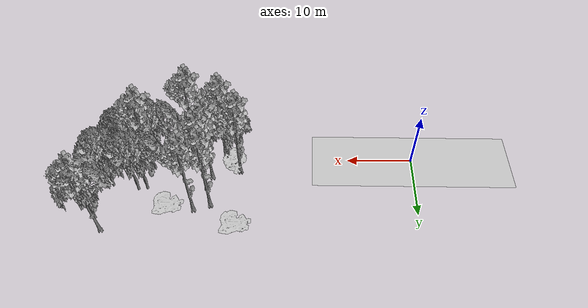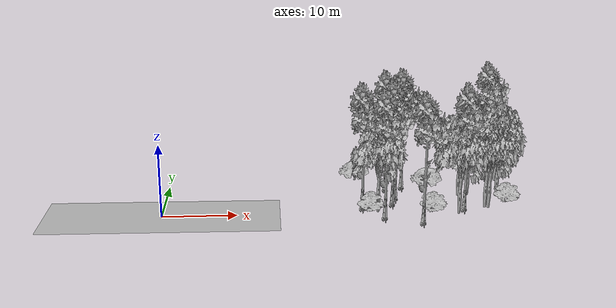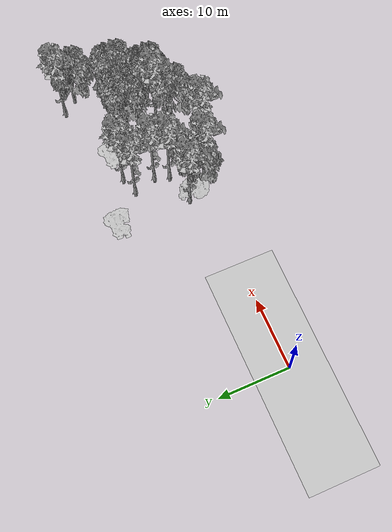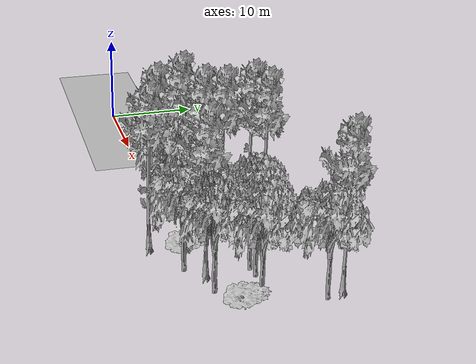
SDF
<sdf version="1.7">
 <world name="default">
  <model name="ground_plane">
   <static>1</static>
   <link name="link">
    <collision name="collision">
     <pose>-50 0 0 0 -0 0</pose>
     <geometry><plane><normal>0 0 1</normal><size>100 100</size></plane></geometry>
     <surface><contact><ode><min_depth>0.01</min_depth><max_vel>0</max_vel></ode></contact></surface>
    </collision>
    <visual name="grass">
     <cast_shadows>0</cast_shadows>
     <geometry>
      <mesh>
       <scale>0.5814285714285714 0.18142857142857144 0.1</scale>
       <uri>file://grass_plane/meshes/grass_plane.dae</uri>
      </mesh>
     </geometry>
    </visual>
   </link>
  </model>
  <model name="Tree 4">
   <static>1</static>
   <pose>47.5329402677274 11.142876085032373 0 1.57079 -0 0</pose>
   <link name="link">
    <collision name="collision">
     <geometry><mesh><scale>3.5 5 3.5</scale><uri>model://tree_2/meshes/tree_2.obj</uri></mesh></geometry>
    </collision>
    <visual name="visual">
     <geometry><mesh><scale>3.5 5 3.5</scale><uri>model://tree_2/meshes/tree_2.obj</uri></mesh></geometry>
    </visual>
   </link>
  </model>
  <model name="Tree 10">
   <static>1</static>
   <pose>39.57564780001539 -0.3773614892481305 0 1.57079 -0 0</pose>
   <link name="link">
    <collision name="collision">
     <geometry><mesh><scale>3.5 5 3.5</scale><uri>model://tree_2/meshes/tree_2.obj</uri></mesh></geometry>
    </collision>
    <visual name="visual">
     <geometry><mesh><scale>3.5 5 3.5</scale><uri>model://tree_2/meshes/tree_2.obj</uri></mesh></geometry>
    </visual>
   </link>
  </model>
  <model name="Tree 25">
   <static>1</static>
   <pose>34.440254552397334 -2.6742771190216548 0 1.57079 -0 0</pose>
   <link name="link">
    <collision name="collision">
     <geometry><mesh><scale>3.5 5 3.5</scale><uri>model://tree_9/meshes/tree_9.obj</uri></mesh></geometry>
    </collision>
    <visual name="visual">
     <geometry><mesh><scale>3.5 5 3.5</scale><uri>model://tree_9/meshes/tree_9.obj</uri></mesh></geometry>
    </visual>
   </link>
  </model>
  <model name="Tree 60">
   <static>1</static>
   <pose>46.54417143557491 13.033610520897081 0 1.57079 -0 0</pose>
   <link name="link">
    <collision name="collision">
     <geometry><mesh><scale>3.5 5 3.5</scale><uri>model://tree_9/meshes/tree_9.obj</uri></mesh></geometry>
    </collision>
    <visual name="visual">
     <geometry><mesh><scale>3.5 5 3.5</scale><uri>model://tree_9/meshes/tree_9.obj</uri></mesh></geometry>
    </visual>
   </link>
  </model>
  <model name="Tree 63">
   <static>1</static>
   <pose>33.45986092854601 9.449806431261983 0 1.57079 -0 0</pose>
   <link name="link">
    <collision name="collision">
     <geometry><mesh><scale>3.5 5 3.5</scale><uri>model://tree_9/meshes/tree_9.obj</uri></mesh></geometry>
    </collision>
    <visual name="visual">
     <geometry><mesh><scale>3.5 5 3.5</scale><uri>model://tree_9/meshes/tree_9.obj</uri></mesh></geometry>
    </visual>
   </link>
  </model>
  <model name="Tree 69">
   <static>1</static>
   <pose>40.829756542174124 5.772867485613297 0 1.57079 -0 0</pose>
   <link name="link">
    <collision name="collision">
     <geometry><mesh><scale>3.5 5 3.5</scale><uri>model://tree_2/meshes/tree_2.obj</uri></mesh></geometry>
    </collision>
    <visual name="visual">
     <geometry><mesh><scale>3.5 5 3.5</scale><uri>model://tree_2/meshes/tree_2.obj</uri></mesh></geometry>
    </visual>
   </link>
  </model>
  <model name="Tree 76">
   <static>1</static>
   <pose>31.244919717300974 3.420025732944598 0 1.57079 -0 0</pose>
   <link name="link">
    <collision name="collision">
     <geometry><mesh><scale>3.5 5 3.5</scale><uri>model://tree_9/meshes/tree_9.obj</uri></mesh></geometry>
    </collision>
    <visual name="visual">
     <geometry><mesh><scale>3.5 5 3.5</scale><uri>model://tree_9/meshes/tree_9.obj</uri></mesh></geometry>
    </visual>
   </link>
  </model>
  <model name="Tree 81">
   <static>1</static>
   <pose>46.93340850068259 3.553819145831728 0 1.57079 -0 0</pose>
   <link name="link">
    <collision name="collision">
     <geometry><mesh><scale>4 2.5 4</scale><uri>model://tree_1/meshes/tree_1.obj</uri></mesh></geometry>
    </collision>
    <visual name="visual">
     <geometry><mesh><scale>4 2.5 4</scale><uri>model://tree_1/meshes/tree_1.obj</uri></mesh></geometry>
    </visual>
   </link>
  </model>
  <model name="Tree 88">
   <static>1</static>
   <pose>43.56926943666306 1.566807455246753 0 1.57079 -0 0</pose>
   <link name="link">
    <collision name="collision">
     <geometry><mesh><scale>3.5 5 3.5</scale><uri>model://tree_2/meshes/tree_2.obj</uri></mesh></geometry>
    </collision>
    <visual name="visual">
     <geometry><mesh><scale>3.5 5 3.5</scale><uri>model://tree_2/meshes/tree_2.obj</uri></mesh></geometry>
    </visual>
   </link>
  </model>
  <model name="Tree 104">
   <static>1</static>
   <pose>31.941034102093326 5.427251664795463 0 1.57079 -0 0</pose>
   <link name="link">
    <collision name="collision">
     <geometry><mesh><scale>3.5 5 3.5</scale><uri>model://tree_9/meshes/tree_9.obj</uri></mesh></geometry>
    </collision>
    <visual name="visual">
     <geometry><mesh><scale>3.5 5 3.5</scale><uri>model://tree_9/meshes/tree_9.obj</uri></mesh></geometry>
    </visual>
   </link>
  </model>
  <model name="Tree 105">
   <static>1</static>
   <pose>27.009741940328766 12.361614503629813 0 1.57079 -0 0</pose>
   <link name="link">
    <collision name="collision">
     <geometry><mesh><scale>3 2 3</scale><uri>model://tree_3/meshes/tree_3.obj</uri></mesh></geometry>
    </collision>
    <visual name="visual">
     <geometry><mesh><scale>3 2 3</scale><uri>model://tree_3/meshes/tree_3.obj</uri></mesh></geometry>
    </visual>
   </link>
  </model>
  <model name="Tree 109">
   <static>1</static>
   <pose>27.74087672632298 1.0854739180341468 0 1.57079 -0 0</pose>
   <link name="link">
    <collision name="collision">
     <geometry><mesh><scale>4 2.5 4</scale><uri>model://tree_1/meshes/tree_1.obj</uri></mesh></geometry>
    </collision>
    <visual name="visual">
     <geometry><mesh><scale>4 2.5 4</scale><uri>model://tree_1/meshes/tree_1.obj</uri></mesh></geometry>
    </visual>
   </link>
  </model>
  <model name="Tree 116">
   <static>1</static>
   <pose>26.955285440189257 2.2409617777160697 0 1.57079 -0 0</pose>
   <link name="link">
    <collision name="collision">
     <geometry><mesh><scale>3.5 5 3.5</scale><uri>model://tree_9/meshes/tree_9.obj</uri></mesh></geometry>
    </collision>
    <visual name="visual">
     <geometry><mesh><scale>3.5 5 3.5</scale><uri>model://tree_9/meshes/tree_9.obj</uri></mesh></geometry>
    </visual>
   </link>
  </model>
  <model name="Tree 117">
   <static>1</static>
   <pose>29.60762128301289 -0.9989796378175431 0 1.57079 -0 0</pose>
   <link name="link">
    <collision name="collision">
     <geometry><mesh><scale>3.5 5 3.5</scale><uri>model://tree_9/meshes/tree_9.obj</uri></mesh></geometry>
    </collision>
    <visual name="visual">
     <geometry><mesh><scale>3.5 5 3.5</scale><uri>model://tree_9/meshes/tree_9.obj</uri></mesh></geometry>
    </visual>
   </link>
  </model>
  <model name="Tree 121">
   <static>1</static>
   <pose>42.16111150900407 5.93216875972308 0 1.57079 -0 0</pose>
   <link name="link">
    <collision name="collision">
     <geometry><mesh><scale>3.5 5 3.5</scale><uri>model://tree_2/meshes/tree_2.obj</uri></mesh></geometry>
    </collision>
    <visual name="visual">
     <geometry><mesh><scale>3.5 5 3.5</scale><uri>model://tree_2/meshes/tree_2.obj</uri></mesh></geometry>
    </visual>
   </link>
  </model>
  <model name="Tree 131">
   <static>1</static>
   <pose>28.799485183013047 0.5515827528016768 0 1.57079 -0 0</pose>
   <link name="link">
    <collision name="collision">
     <geometry><mesh><scale>3.5 5 3.5</scale><uri>model://tree_2/meshes/tree_2.obj</uri></mesh></geometry>
    </collision>
    <visual name="visual">
     <geometry><mesh><scale>3.5 5 3.5</scale><uri>model://tree_2/meshes/tree_2.obj</uri></mesh></geometry>
    </visual>
   </link>
  </model>
  <model name="Tree 133">
   <static>1</static>
   <pose>44.011615669436424 1.4203711779474695 0 1.57079 -0 0</pose>
   <link name="link">
    <collision name="collision">
     <geometry><mesh><scale>3.5 5 3.5</scale><uri>model://tree_2/meshes/tree_2.obj</uri></mesh></geometry>
    </collision>
    <visual name="visual">
     <geometry><mesh><scale>3.5 5 3.5</scale><uri>model://tree_2/meshes/tree_2.obj</uri></mesh></geometry>
    </visual>
   </link>
  </model>
  <model name="Tree 141">
   <static>1</static>
   <pose>40.795399618345925 1.4517553043383238 0 1.57079 -0 0</pose>
   <link name="link">
    <collision name="collision">
     <geometry><mesh><scale>3.5 5 3.5</scale><uri>model://tree_9/meshes/tree_9.obj</uri></mesh></geometry>
    </collision>
    <visual name="visual">
     <geometry><mesh><scale>3.5 5 3.5</scale><uri>model://tree_9/meshes/tree_9.obj</uri></mesh></geometry>
    </visual>
   </link>
  </model>
  <model name="Tree 156">
   <static>1</static>
   <pose>46.15880367517535 5.306682625462976 0 1.57079 -0 0</pose>
   <link name="link">
    <collision name="collision">
     <geometry><mesh><scale>3.5 5 3.5</scale><uri>model://tree_2/meshes/tree_2.obj</uri></mesh></geometry>
    </collision>
    <visual name="visual">
     <geometry><mesh><scale>3.5 5 3.5</scale><uri>model://tree_2/meshes/tree_2.obj</uri></mesh></geometry>
    </visual>
   </link>
  </model>
  <model name="Tree 160">
   <static>1</static>
   <pose>31.00223786693094 8.628351026293405 0 1.57079 -0 0</pose>
   <link name="link">
    <collision name="collision">
     <geometry><mesh><scale>3.5 5 3.5</scale><uri>model://tree_9/meshes/tree_9.obj</uri></mesh></geometry>
    </collision>
    <visual name="visual">
     <geometry><mesh><scale>3.5 5 3.5</scale><uri>model://tree_9/meshes/tree_9.obj</uri></mesh></geometry>
    </visual>
   </link>
  </model>
  <model name="Tree 164">
   <static>1</static>
   <pose>36.151579564533364 0.7013568157214127 0 1.57079 -0 0</pose>
   <link name="link">
    <collision name="collision">
     <geometry><mesh><scale>4 2.5 4</scale><uri>model://tree_1/meshes/tree_1.obj</uri></mesh></geometry>
    </collision>
    <visual name="visual">
     <geometry><mesh><scale>4 2.5 4</scale><uri>model://tree_1/meshes/tree_1.obj</uri></mesh></geometry>
    </visual>
   </link>
  </model>
  <model name="Tree 167">
   <static>1</static>
   <pose>37.16791267764947 9.22485731714142 0 1.57079 -0 0</pose>
   <link name="link">
    <collision name="collision">
     <geometry><mesh><scale>3 2 3</scale><uri>model://tree_3/meshes/tree_3.obj</uri></mesh></geometry>
    </collision>
    <visual name="visual">
     <geometry><mesh><scale>3 2 3</scale><uri>model://tree_3/meshes/tree_3.obj</uri></mesh></geometry>
    </visual>
   </link>
  </model>
 </world>
</sdf>
